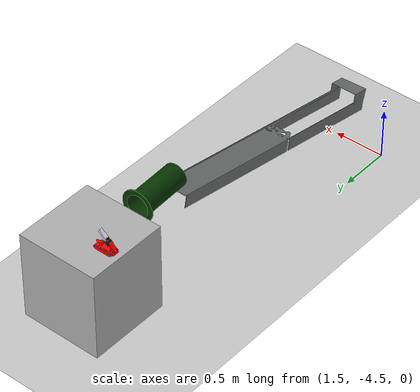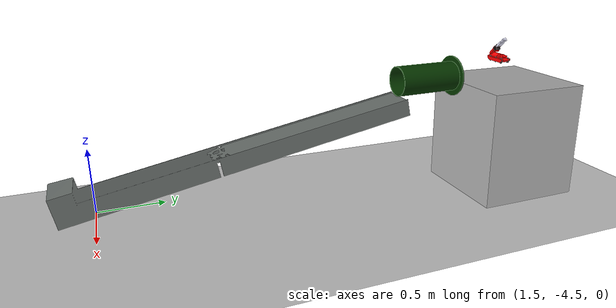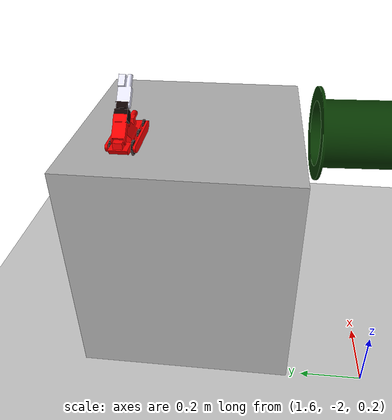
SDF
<sdf version="1.9">
 <world name="empty">
  <physics name="1ms" type="ignored">
   <max_step_size>0.001</max_step_size>
   <real_time_factor>1</real_time_factor>
   <real_time_update_rate>1000</real_time_update_rate>
  </physics>
  <plugin name="gz::sim::systems::Physics" filename="ignition-gazebo-physics-system"/>
  <plugin name="gz::sim::systems::UserCommands" filename="ignition-gazebo-user-commands-system"/>
  <plugin name="gz::sim::systems::SceneBroadcaster" filename="ignition-gazebo-scene-broadcaster-system"/>
  <plugin name="gz::sim::systems::Contact" filename="ignition-gazebo-contact-system"/>
  <gravity>0 0 -9.8</gravity>
  <magnetic_field>6e-06 2.3e-05 -4.2e-05</magnetic_field>
  <atmosphere type="adiabatic"/>
  <scene><ambient>0.4 0.4 0.4 1</ambient><background>0.7 0.7 0.7 1</background><shadows>true</shadows></scene>
  <model name="ground_plane">
   <static>true</static>
   <link name="link">
    <collision name="collision">
     <geometry><plane><normal>0 0 1</normal><size>100 100</size></plane></geometry>
     <surface><friction><ode><mu>10</mu><slip1>0.0</slip1><slip2>0.0</slip2></ode></friction></surface>
    </collision>
    <visual name="visual">
     <geometry><plane><normal>0 0 1</normal><size>100 100</size></plane></geometry>
     <material>
      <ambient>0.8 0.8 0.8 1</ambient>
      <diffuse>0.8 0.8 0.8 1</diffuse>
      <specular>0.8 0.8 0.8 1</specular>
     </material>
    </visual>
    <inertial>
     <mass>1</mass>
     <inertia><ixx>1</ixx><ixy>0</ixy><ixz>0</ixz><iyy>1</iyy><iyz>0</iyz><izz>1</izz></inertia>
    </inertial>
   </link>
  </model>
  <model name="access_pipe">
   <pose>2.00442 -1.8 0.915124 0 0 -1.52508</pose>
   <static>true</static>
   <link name="link">
    <visual name="visual">
     <geometry>
      <mesh>
       <uri>file:///workspace/src/scorpion/worlds_and_models/reactor_2/meshes/scorpion_reactor_environment-EntryPipe.dae</uri>
      </mesh>
     </geometry>
    </visual>
    <collision name="pipe_col_floor">
     <pose>0.2 0 -0.12 0 0 0</pose>
     <geometry><box><size>0.5 0.155 0.128</size></box></geometry>
     <surface>
      <friction><ode><mu>0.5</mu><mu1>0.5</mu1><mu2>1.0</mu2><fdir1>0 0 1</fdir1></ode></friction>
     </surface>
    </collision>
    <collision name="pipe_col_top">
     <pose>0.2 0 0.12 0 0 0</pose>
     <geometry><box><size>0.5 0.155 0.128</size></box></geometry>
    </collision>
    <collision name="pipe_col_left">
     <pose>0.2 0.15 0.0 1.57 0 0</pose>
     <geometry><box><size>0.5 0.155 0.128</size></box></geometry>
    </collision>
    <collision name="pipe_col_right">
     <pose>0.2 -0.15 0 1.57 0 0</pose>
     <geometry><box><size>0.5 0.155 0.128</size></box></geometry>
    </collision>
    <inertial>
     <mass>1</mass>
     <inertia><ixx>1</ixx><ixy>0</ixy><ixz>0</ixz><iyy>1</iyy><iyz>0</iyz><izz>1</izz></inertia>
    </inertial>
   </link>
   <static>false</static>
  </model>
  <model name="crd_rail">
   <static>true</static>
   <pose>2.00598 -2.27127 0.848981 0 0.186106 -1.56838</pose>
   <link name="link">
    <visual name="visual">
     <pose>0 0 -0.06 0 0 0</pose>
     <geometry>
      <mesh>
       <uri>file:///workspace/src/scorpion/worlds_and_models/reactor_2/meshes/scorpion_reactor_environment-CRD_Rail.dae</uri>
      </mesh>
     </geometry>
    </visual>
    <collision name="rail_base_collision">
     <pose>0.75 0 -0.12 0 0 0</pose>
     <geometry><box><size>1.5 0.255 0.128</size></box></geometry>
     <surface>
      <friction><ode><mu>0.5</mu><mu1>0.5</mu1><mu2>1.0</mu2><fdir1>0 0 1</fdir1></ode></friction>
     </surface>
    </collision>
    <inertial>
     <mass>1</mass>
     <inertia><ixx>1</ixx><ixy>0</ixy><ixz>0</ixz><iyy>1</iyy><iyz>0</iyz><izz>1</izz></inertia>
    </inertial>
   </link>
   <static>false</static>
  </model>
  <include>
   <uri>file:///workspace/install/scorpion/share/scorpion/worlds_and_models/scorpion/scorpion.sdf</uri>
   <name>scorpion</name>
   <pose>1.91 -1.21684 0.955008 -0 0 0</pose>
  </include>
  <model name="box">
   <pose>2.13 -1.37 0.425 0 -0 -0.000563</pose>
   <link name="box_link">
    <inertial>
     <inertia><ixx>0.16666</ixx><ixy>0</ixy><ixz>0</ixz><iyy>0.16666</iyy><iyz>0</iyz><izz>0.16666</izz></inertia>
     <mass>1</mass>
    </inertial>
    <collision name="box_collision"><geometry><box><size>0.8 0.8 0.9</size></box></geometry></collision>
    <visual name="box_visual">
     <geometry><box><size>0.8 0.8 0.9</size></box></geometry>
     <material>
      <ambient>0.3 0.3 0.3 1</ambient>
      <diffuse>0.7 0.7 0.7 1</diffuse>
      <specular>1 1 1 1</specular>
     </material>
    </visual>
   </link>
   <static>true</static>
  </model>
  <light name="sun" type="directional">
   <pose>0 0 10 0 -0 0</pose>
   <intensity>1</intensity>
   <direction>-0.5 0.1 -0.9</direction>
   <diffuse>0.8 0.8 0.8 1</diffuse>
   <specular>0.2 0.2 0.2 1</specular>
   <attenuation>
    <range>1000</range>
    <linear>0.01</linear>
    <constant>0.90000000000000002</constant>
    <quadratic>0.001</quadratic>
   </attenuation>
   <spot><inner_angle>0</inner_angle><outer_angle>0</outer_angle><falloff>0</falloff></spot>
  </light>
 </world>
</sdf>

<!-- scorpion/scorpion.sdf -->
<sdf version='1.9'>
  <model name='scorpion'>
    <link name='base_link'>
      <inertial>
        <pose>-0.08999998419427797 5.333881995895085e-05 0 0 0 0</pose>
        <mass>4</mass>
        <inertia>
          <ixx>0.01019999876502858</ixx>
          <ixy>4.8004910330498377e-06</ixy>
          <ixz>0</ixz>
          <iyy>0.018299989834971431</iyy>
          <iyz>0</iyz>
          <izz>0.013499994600000001</izz>
        </inertia>
      </inertial>
      <collision name='base_link_fixed_joint_lump__chassis_link_collision'>
        <pose>-0.08999998419427796 5.333881995895085e-05 0.03 0 0 3.141</pose>
        <geometry>
          <box>
            <size>0.18 0.09 0.03</size>
          </box>
        </geometry>
      </collision>
      <visual name='base_link_fixed_joint_lump__chassis_link_visual'>
        <pose>0 0 0 0 0 3.141</pose>
        <geometry>
          <mesh>
            <scale>1 1 1</scale>
            <uri>file:///workspace/install/scorpion/share/scorpion/worlds_and_models/scorpion/meshes/Unnamed_chassis_body.dae</uri>
          </mesh>
        </geometry>
        <material>
          <diffuse>1 0 0 1</diffuse>
          <ambient>1 0 0 1</ambient>
        </material>
      </visual>
      <sensor name='realsense_d435' type='rgbd_camera'>
        <topic>realsense</topic>
        <update_rate>5</update_rate>
        <camera name='depth_camera'>
          <horizontal_fov>1.3999999999999999</horizontal_fov>
          <image>
            <width>640</width>
            <height>480</height>
            <format>R8G8B8</format>
          </image>
          <clip>
            <near>0.01</near>
            <far>5</far>
          </clip>
          <depth_camera>
            <clip>
              <near>0.10000000000000001</near>
              <far>5</far>
            </clip>
            <output>depths</output>
          </depth_camera>
          <noise>
            <type>gaussian</type>
            <mean>0</mean>
            <stddev>0.0070000000000000001</stddev>
          </noise>
        </camera>
        <pose>0 0 0.1 0 -0 -0.00118531</pose>
        <ignition_frame_id>chassis_camera_optical_link</ignition_frame_id>
      </sensor>
    </link>
    <joint name='joint_1' type='revolute'>
      <pose relative_to='base_link'>-0.1899999666323646 0.0001126041754688962 0.05 3.833233541708435e-20 0.7853981633974482 3.141</pose>
      <parent>base_link</parent>
      <child>tail_link1</child>
      <axis>
        <xyz>0 -1 0</xyz>
        <limit>
          <lower>-3.1415926535897931</lower>
          <upper>3.1400000000000001</upper>
          <effort>10</effort>
          <velocity>10</velocity>
        </limit>
        <dynamics>
          <spring_reference>0</spring_reference>
          <spring_stiffness>0</spring_stiffness>
        </dynamics>
      </axis>
    </joint>
    <link name='tail_link1'>
      <pose relative_to='joint_1'>0 0 0 0 0 0</pose>
      <inertial>
        <pose>-0.04 0 0 0 0 0</pose>
        <mass>0.80000000000000004</mass>
        <inertia>
          <ixx>0.00012166661799999999</ixx>
          <ixy>0</ixy>
          <ixz>0</ixz>
          <iyy>0.00049666646800000007</iyy>
          <iyz>0</iyz>
          <izz>0.00058833309800000006</izz>
        </inertia>
      </inertial>
      <collision name='tail_link1_collision'>
        <pose>-0.042 0 0 0 0 0</pose>
        <geometry>
          <box>
            <size>0.085 0.04 0.015</size>
          </box>
        </geometry>
      </collision>
      <visual name='tail_link1_visual'>
        <pose>0 0 0 0 0 0</pose>
        <geometry>
          <mesh>
            <scale>1 1 1</scale>
            <uri>file:///workspace/install/scorpion/share/scorpion/worlds_and_models/scorpion/meshes/Unnamed_tail1_body.dae</uri>
          </mesh>
        </geometry>
        <material>
          <diffuse>1 0 0 1</diffuse>
          <ambient>1 0 0 1</ambient>
        </material>
      </visual>
    </link>
    <joint name='joint_2' type='revolute'>
      <pose relative_to='tail_link1'>-0.065 0 -0.008 0 0 0</pose>
      <parent>tail_link1</parent>
      <child>tail_link2</child>
      <axis>
        <xyz>0 0 1</xyz>
        <limit>
          <lower>-1.570796326794897</lower>
          <upper>1.570796326794897</upper>
          <effort>10</effort>
          <velocity>1</velocity>
        </limit>
        <dynamics>
          <spring_reference>0</spring_reference>
          <spring_stiffness>0</spring_stiffness>
        </dynamics>
      </axis>
    </joint>
    <link name='tail_link2'>
      <pose relative_to='joint_2'>0 0 0 0 0 0</pose>
      <inertial>
        <pose>-0.025 0 0 0 0 0</pose>
        <mass>0.20000000000000001</mass>
        <inertia>
          <ixx>4.8749980500000002e-05</ixx>
          <ixy>0</ixy>
          <ixz>0</ixz>
          <iyy>7.5416636500000002e-05</iyy>
          <iyz>0</iyz>
          <izz>5.6666643999999998e-05</izz>
        </inertia>
      </inertial>
      <collision name='tail_link2_collision'>
        <pose>-0.025 0 0 0 0 0</pose>
        <geometry>
          <box>
            <size>0.05 0.03 0.04</size>
          </box>
        </geometry>
      </collision>
      <visual name='tail_link2_visual'>
        <pose>0 0 0 0 0 0</pose>
        <geometry>
          <mesh>
            <scale>1 1 1</scale>
            <uri>file:///workspace/install/scorpion/share/scorpion/worlds_and_models/scorpion/meshes/Unnamed_tail2_body.dae</uri>
          </mesh>
        </geometry>
        <material>
          <diffuse>0.05375 0.005 0 1</diffuse>
          <ambient>0.05375 0.005 0 1</ambient>
        </material>
      </visual>
    </link>
    <joint name='joint_3' type='revolute'>
      <pose relative_to='tail_link2'>-0.046 0 0 0 0 0</pose>
      <parent>tail_link2</parent>
      <child>tail_link3</child>
      <axis>
        <xyz>0 -1 0</xyz>
        <limit>
          <lower>-1.570796326794897</lower>
          <upper>1.570796326794897</upper>
          <effort>10</effort>
          <velocity>1</velocity>
        </limit>
        <dynamics>
          <spring_reference>0</spring_reference>
          <spring_stiffness>0</spring_stiffness>
        </dynamics>
      </axis>
    </joint>
    <link name='tail_link3'>
      <pose relative_to='joint_3'>0 0 0 0 0 0</pose>
      <inertial>
        <pose>-0.05 0 0 0 0 0</pose>
        <mass>0.40000000000000002</mass>
        <inertia>
          <ixx>0.00011803328612000001</ixx>
          <ixy>0</ixy>
          <ixz>0</ixz>
          <iyy>0.00043053316112000008</iyy>
          <iyz>0</iyz>
          <izz>0.00035416652500000012</izz>
        </inertia>
      </inertial>
      <collision name='tail_link3_collision'>
        <pose>-0.05 0 0 1.57 0 0</pose>
        <geometry>
          <box>
            <size>0.1 0.025 0.054</size>
          </box>
        </geometry>
      </collision>
      <visual name='tail_link3_visual'>
        <pose>0 0 0 0 0 0</pose>
        <geometry>
          <mesh>
            <scale>1 1 1</scale>
            <uri>file:///workspace/install/scorpion/share/scorpion/worlds_and_models/scorpion/meshes/Unnamed_tail3_body.dae</uri>
          </mesh>
        </geometry>
        <material>
          <diffuse>0.9125 0.9125 1 1</diffuse>
          <ambient>0.9125 0.9125 1 1</ambient>
        </material>
      </visual>
      <sensor name='tailcamera' type='camera'>
        <topic>tail_camera</topic>
        <update_rate>5</update_rate>
        <camera>
          <horizontal_fov>1.0469999999999999</horizontal_fov>
          <image>
            <width>320</width>
            <height>240</height>
          </image>
          <clip>
            <near>0.10000000000000001</near>
            <far>20</far>
          </clip>
        </camera>
        <always_on>true</always_on>
        <update_rate>5</update_rate>
        <visualize>true</visualize>
        <pose>-0.25 0 0 0 -0 3.141</pose>
        <ignition_frame_id>tail_camera_link</ignition_frame_id>
      </sensor>
    </link>
    <joint name='left_wheel_joint_1' type='revolute'>
      <pose relative_to='base_link'>-0.01998043892029905 0.03301184727567059 0.015 0 0 3.141</pose>
      <parent>base_link</parent>
      <child>left_wheel_1</child>
      <axis>
        <xyz>0 -1 0</xyz>
        <limit>
          <effort>10</effort>
          <velocity>1</velocity>
          <lower>-10000000000000000</lower>
          <upper>10000000000000000</upper>
        </limit>
        <dynamics>
          <spring_reference>0</spring_reference>
          <spring_stiffness>0</spring_stiffness>
        </dynamics>
      </axis>
    </joint>
    <link name='left_wheel_1'>
      <pose relative_to='left_wheel_joint_1'>0 0 0 0 0 0</pose>
      <inertial>
        <pose>0 0 0 1.57 0 0</pose>
        <mass>0.00050000000000000001</mass>
        <inertia>
          <ixx>1.354166125e-08</ixx>
          <ixy>0</ixy>
          <ixz>0</ixz>
          <iyy>1.354166125e-08</iyy>
          <iyz>0</iyz>
          <izz>2.4999999999999999e-08</izz>
        </inertia>
      </inertial>
      <collision name='left_wheel_1_collision'>
        <pose>0 0 0 1.57 0 0</pose>
        <geometry>
          <cylinder>
            <length>0.02</length>
            <radius>0.02</radius>
          </cylinder>
        </geometry>
        <surface>
          <friction>
            <ode>
              <mu>0.5</mu>
              <mu2>1</mu2>
              <fdir1>0 0 1</fdir1>
              <mu1>0.5</mu1>
            </ode>
          </friction>
          <contact>
            <ode/>
          </contact>
        </surface>
      </collision>
      <visual name='left_wheel_1_visual'>
        <pose>0 0 0 0 0 0</pose>
        <geometry>
          <mesh>
            <scale>1 1 1</scale>
            <uri>file:///workspace/install/scorpion/share/scorpion/worlds_and_models/scorpion/meshes/Unnamed_wheel_body.dae</uri>
          </mesh>
        </geometry>
        <material>
          <diffuse>0.05375 0.005 0 1</diffuse>
          <ambient>0.05375 0.005 0 1</ambient>
        </material>
      </visual>
    </link>
    <joint name='left_wheel_joint_2' type='revolute'>
      <pose relative_to='base_link'>-0.08998042662695968 0.03305333302452755 0.015 0 0 3.141</pose>
      <parent>base_link</parent>
      <child>left_wheel_2</child>
      <axis>
        <xyz>0 -1 0</xyz>
        <limit>
          <effort>10</effort>
          <velocity>1</velocity>
          <lower>-10000000000000000</lower>
          <upper>10000000000000000</upper>
        </limit>
        <dynamics>
          <spring_reference>0</spring_reference>
          <spring_stiffness>0</spring_stiffness>
        </dynamics>
      </axis>
    </joint>
    <link name='left_wheel_2'>
      <pose relative_to='left_wheel_joint_2'>0 0 0 0 0 0</pose>
      <inertial>
        <pose>0 0 0 1.57 0 0</pose>
        <mass>0.00050000000000000001</mass>
        <inertia>
          <ixx>1.354166125e-08</ixx>
          <ixy>0</ixy>
          <ixz>0</ixz>
          <iyy>1.354166125e-08</iyy>
          <iyz>0</iyz>
          <izz>2.4999999999999999e-08</izz>
        </inertia>
      </inertial>
      <collision name='left_wheel_2_collision'>
        <pose>0 0 0 1.57 0 0</pose>
        <geometry>
          <cylinder>
            <length>0.02</length>
            <radius>0.02</radius>
          </cylinder>
        </geometry>
        <surface>
          <friction>
            <ode>
              <mu>0.5</mu>
              <mu2>1</mu2>
              <fdir1>0 0 1</fdir1>
              <mu1>0.5</mu1>
            </ode>
          </friction>
          <contact>
            <ode/>
          </contact>
        </surface>
      </collision>
      <visual name='left_wheel_2_visual'>
        <pose>0 0 0 0 0 0</pose>
        <geometry>
          <mesh>
            <scale>1 1 1</scale>
            <uri>file:///workspace/install/scorpion/share/scorpion/worlds_and_models/scorpion/meshes/Unnamed_wheel_body.dae</uri>
          </mesh>
        </geometry>
        <material>
          <diffuse>0.05375 0.005 0 1</diffuse>
          <ambient>0.05375 0.005 0 1</ambient>
        </material>
      </visual>
    </link>
    <joint name='left_wheel_joint_3' type='revolute'>
      <pose relative_to='base_link'>-0.1599804143336204 0.03309481877338451 0.015 0 0 3.141</pose>
      <parent>base_link</parent>
      <child>left_wheel_3</child>
      <axis>
        <xyz>0 -1 0</xyz>
        <limit>
          <effort>10</effort>
          <velocity>1</velocity>
          <lower>-10000000000000000</lower>
          <upper>10000000000000000</upper>
        </limit>
        <dynamics>
          <spring_reference>0</spring_reference>
          <spring_stiffness>0</spring_stiffness>
        </dynamics>
      </axis>
    </joint>
    <link name='left_wheel_3'>
      <pose relative_to='left_wheel_joint_3'>0 0 0 0 0 0</pose>
      <inertial>
        <pose>0 0 0 1.57 0 0</pose>
        <mass>0.00050000000000000001</mass>
        <inertia>
          <ixx>1.354166125e-08</ixx>
          <ixy>0</ixy>
          <ixz>0</ixz>
          <iyy>1.354166125e-08</iyy>
          <iyz>0</iyz>
          <izz>2.4999999999999999e-08</izz>
        </inertia>
      </inertial>
      <collision name='left_wheel_3_collision'>
        <pose>0 0 0 1.57 0 0</pose>
        <geometry>
          <cylinder>
            <length>0.02</length>
            <radius>0.02</radius>
          </cylinder>
        </geometry>
        <surface>
          <friction>
            <ode>
              <mu>0.5</mu>
              <mu2>1</mu2>
              <fdir1>0 0 1</fdir1>
              <mu1>0.5</mu1>
            </ode>
          </friction>
          <contact>
            <ode/>
          </contact>
        </surface>
      </collision>
      <visual name='left_wheel_3_visual'>
        <pose>0 0 0 0 0 0</pose>
        <geometry>
          <mesh>
            <scale>1 1 1</scale>
            <uri>file:///workspace/install/scorpion/share/scorpion/worlds_and_models/scorpion/meshes/Unnamed_wheel_body.dae</uri>
          </mesh>
        </geometry>
        <material>
          <diffuse>0.05375 0.005 0 1</diffuse>
          <ambient>0.05375 0.005 0 1</ambient>
        </material>
      </visual>
    </link>
    <joint name='right_wheel_joint_1' type='revolute'>
      <pose relative_to='base_link'>-0.02001955405493561 -0.03298814113346661 0.015 0 0 3.141</pose>
      <parent>base_link</parent>
      <child>right_wheel_1</child>
      <axis>
        <xyz>0 -1 0</xyz>
        <limit>
          <effort>10</effort>
          <velocity>1</velocity>
          <lower>-10000000000000000</lower>
          <upper>10000000000000000</upper>
        </limit>
        <dynamics>
          <spring_reference>0</spring_reference>
          <spring_stiffness>0</spring_stiffness>
        </dynamics>
      </axis>
    </joint>
    <link name='right_wheel_1'>
      <pose relative_to='right_wheel_joint_1'>0 0 0 0 0 0</pose>
      <inertial>
        <pose>0 0 0 1.57 0 0</pose>
        <mass>0.00050000000000000001</mass>
        <inertia>
          <ixx>1.354166125e-08</ixx>
          <ixy>0</ixy>
          <ixz>0</ixz>
          <iyy>1.354166125e-08</iyy>
          <iyz>0</iyz>
          <izz>2.4999999999999999e-08</izz>
        </inertia>
      </inertial>
      <collision name='right_wheel_1_collision'>
        <pose>0 0 0 1.57 0 0</pose>
        <geometry>
          <cylinder>
            <length>0.02</length>
            <radius>0.02</radius>
          </cylinder>
        </geometry>
        <surface>
          <friction>
            <ode>
              <mu>0.5</mu>
              <mu2>1</mu2>
              <fdir1>0 0 1</fdir1>
              <mu1>0.5</mu1>
            </ode>
          </friction>
          <contact>
            <ode/>
          </contact>
        </surface>
      </collision>
      <visual name='right_wheel_1_visual'>
        <pose>0 0 0 0 0 0</pose>
        <geometry>
          <mesh>
            <scale>1 1 1</scale>
            <uri>file:///workspace/install/scorpion/share/scorpion/worlds_and_models/scorpion/meshes/Unnamed_wheel_body.dae</uri>
          </mesh>
        </geometry>
        <material>
          <diffuse>0.05375 0.005 0 1</diffuse>
          <ambient>0.05375 0.005 0 1</ambient>
        </material>
      </visual>
    </link>
    <joint name='right_wheel_joint_2' type='revolute'>
      <pose relative_to='base_link'>-0.09001954176159624 -0.03294665538460965 0.015 0 0 3.141</pose>
      <parent>base_link</parent>
      <child>right_wheel_2</child>
      <axis>
        <xyz>0 -1 0</xyz>
        <limit>
          <effort>10</effort>
          <velocity>1</velocity>
          <lower>-10000000000000000</lower>
          <upper>10000000000000000</upper>
        </limit>
        <dynamics>
          <spring_reference>0</spring_reference>
          <spring_stiffness>0</spring_stiffness>
        </dynamics>
      </axis>
    </joint>
    <link name='right_wheel_2'>
      <pose relative_to='right_wheel_joint_2'>0 0 0 0 0 0</pose>
      <inertial>
        <pose>0 0 0 1.57 0 0</pose>
        <mass>0.00050000000000000001</mass>
        <inertia>
          <ixx>1.354166125e-08</ixx>
          <ixy>0</ixy>
          <ixz>0</ixz>
          <iyy>1.354166125e-08</iyy>
          <iyz>0</iyz>
          <izz>2.4999999999999999e-08</izz>
        </inertia>
      </inertial>
      <collision name='right_wheel_2_collision'>
        <pose>0 0 0 1.57 0 0</pose>
        <geometry>
          <cylinder>
            <length>0.02</length>
            <radius>0.02</radius>
          </cylinder>
        </geometry>
        <surface>
          <friction>
            <ode>
              <mu>0.5</mu>
              <mu2>1</mu2>
              <fdir1>0 0 1</fdir1>
              <mu1>0.5</mu1>
            </ode>
          </friction>
          <contact>
            <ode/>
          </contact>
        </surface>
      </collision>
      <visual name='right_wheel_2_visual'>
        <pose>0 0 0 0 0 0</pose>
        <geometry>
          <mesh>
            <scale>1 1 1</scale>
            <uri>file:///workspace/install/scorpion/share/scorpion/worlds_and_models/scorpion/meshes/Unnamed_wheel_body.dae</uri>
          </mesh>
        </geometry>
        <material>
          <diffuse>0.05375 0.005 0 1</diffuse>
          <ambient>0.05375 0.005 0 1</ambient>
        </material>
      </visual>
    </link>
    <joint name='right_wheel_joint_3' type='revolute'>
      <pose relative_to='base_link'>-0.1600195294682569 -0.03290516963575269 0.015 0 0 3.141</pose>
      <parent>base_link</parent>
      <child>right_wheel_3</child>
      <axis>
        <xyz>0 -1 0</xyz>
        <limit>
          <effort>10</effort>
          <velocity>1</velocity>
          <lower>-10000000000000000</lower>
          <upper>10000000000000000</upper>
        </limit>
        <dynamics>
          <spring_reference>0</spring_reference>
          <spring_stiffness>0</spring_stiffness>
        </dynamics>
      </axis>
    </joint>
    <link name='right_wheel_3'>
      <pose relative_to='right_wheel_joint_3'>0 0 0 0 0 0</pose>
      <inertial>
        <pose>0 0 0 1.57 0 0</pose>
        <mass>0.00050000000000000001</mass>
        <inertia>
          <ixx>1.354166125e-08</ixx>
          <ixy>0</ixy>
          <ixz>0</ixz>
          <iyy>1.354166125e-08</iyy>
          <iyz>0</iyz>
          <izz>2.4999999999999999e-08</izz>
        </inertia>
      </inertial>
      <collision name='right_wheel_3_collision'>
        <pose>0 0 0 1.57 0 0</pose>
        <geometry>
          <cylinder>
            <length>0.02</length>
            <radius>0.02</radius>
          </cylinder>
        </geometry>
        <surface>
          <friction>
            <ode>
              <mu>0.5</mu>
              <mu2>1</mu2>
              <fdir1>0 0 1</fdir1>
              <mu1>0.5</mu1>
            </ode>
          </friction>
          <contact>
            <ode/>
          </contact>
        </surface>
      </collision>
      <visual name='right_wheel_3_visual'>
        <pose>0 0 0 0 0 0</pose>
        <geometry>
          <mesh>
            <scale>1 1 1</scale>
            <uri>file:///workspace/install/scorpion/share/scorpion/worlds_and_models/scorpion/meshes/Unnamed_wheel_body.dae</uri>
          </mesh>
        </geometry>
        <material>
          <diffuse>0.05375 0.005 0 1</diffuse>
          <ambient>0.05375 0.005 0 1</ambient>
        </material>
      </visual>
    </link>
    <plugin name='ign_ros2_control::IgnitionROS2ControlPlugin' filename='ign_ros2_control-system'>
      <ros>
        <remapping>/diff_drive_base_controller/odom:=odom</remapping>
        <remapping>/diff_drive_base_controller/tf_odometry:=tf</remapping>
        <remapping>/diff_drive_base_controller/cmd_vel_unstamped:=cmd_vel</remapping>
      </ros>
      <parameters>/workspace/install/scorpion/share/scorpion/config/diffdrive_control.yaml</parameters>
    </plugin>
    <plugin name='ignition::gazebo::systems::Sensors' filename='ignition-gazebo-sensors-system'>
      <render_engine>ogre2</render_engine>
    </plugin>
    <frame name='chassis_camera_joint' attached_to='chassis_link'>
      <pose>0 0 0.1 0 -0 3.141</pose>
    </frame>
    <frame name='chassis_camera_link' attached_to='chassis_camera_joint'/>
    <frame name='chasis_link_joint' attached_to='base_link'>
      <pose>0 0 0 0 -0 3.141</pose>
    </frame>
    <frame name='chassis_link' attached_to='chasis_link_joint'/>
    <frame name='tail_camera_joint' attached_to='tail_link3'>
      <pose>-0.25 0 0 0 -0 3.141</pose>
    </frame>
    <frame name='tail_camera_link' attached_to='tail_camera_joint'/>
  </model>
</sdf>
